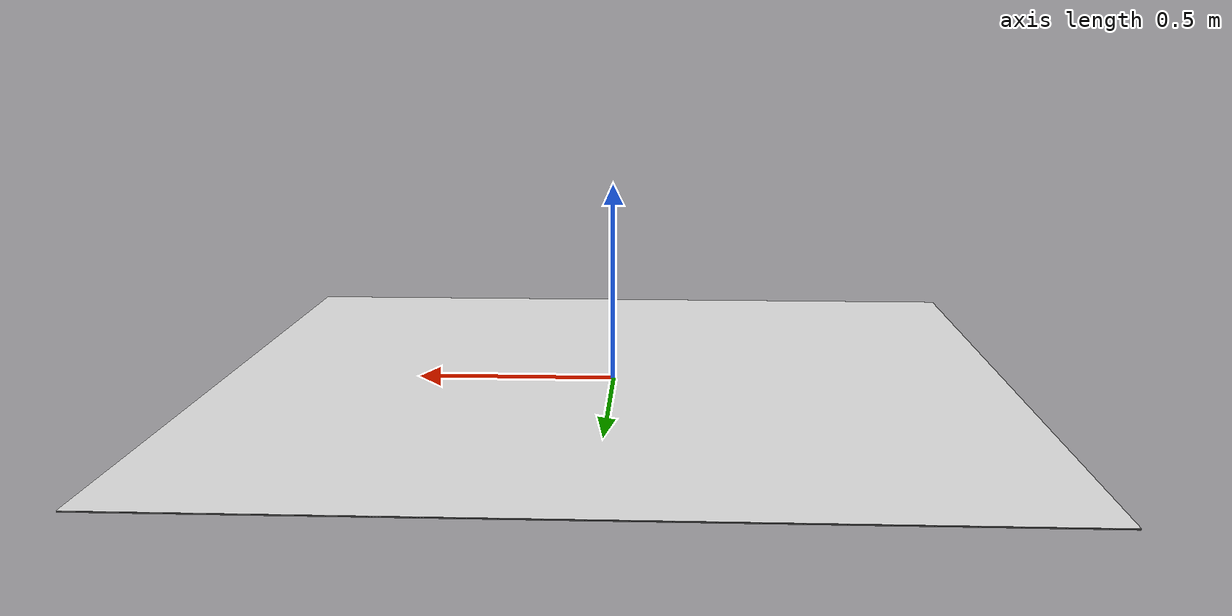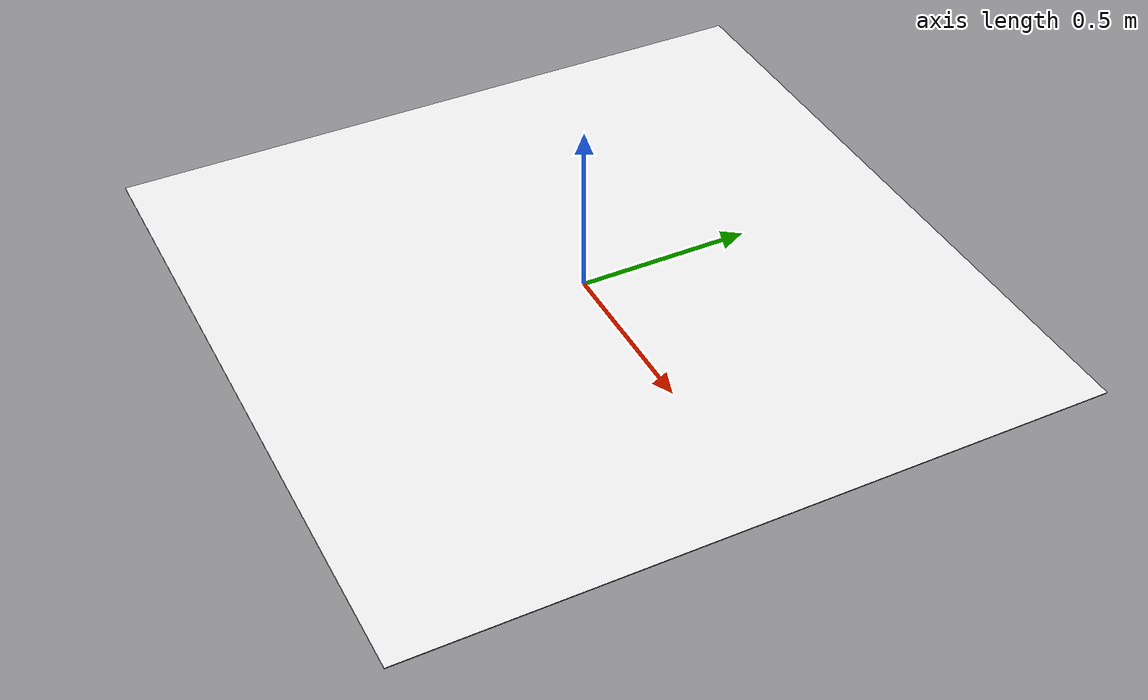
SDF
<?xml version="1.0" ?>
<sdf version="1.8">
  <model name="aruco_marker_999">
    <static>true</static>
    <link name="link">
      <pose>0 0 0 0 0 0</pose>
      <inertial>
        <mass>0.01</mass>
        <inertia>
          <ixx>0.001</ixx>
          <iyy>0.001</iyy>
          <izz>0.002</izz>
        </inertia>
      </inertial>

      <!-- Visual (frente do marcador) -->
      <visual name="front_visual">
        <pose>0 0 0.001 0 0 0</pose>
        <geometry>
          <box>
            <size>2.0 2.0 0.001</size>
          </box>
        </geometry>
        <material>
          <ambient>1 1 1 1</ambient>
          <diffuse>1 1 1 1</diffuse>
          <specular>0.1 0.1 0.1 1</specular>
          <pbr>
            <metal>
              <albedo_map>model://ArUco999/materials/textures/aruco_marker_999.png</albedo_map>
            </metal>
          </pbr>
        </material>
      </visual>

      <!-- Visual (verso - branco) -->
      <visual name="back_visual">
        <pose>0 0 -0.001 0 0 0</pose>
        <geometry>
          <box>
            <size>2.0 2.0 0.001</size>
          </box>
        </geometry>
        <material>
          <ambient>0.9 0.9 0.9 1</ambient>
          <diffuse>0.9 0.9 0.9 1</diffuse>
        </material>
      </visual>

      <!-- Visual (lateral - espessura) -->
      <visual name="edge_visual">
        <pose>0 0 0 0 0 0</pose>
        <geometry>
          <box>
            <size>2.0 2.0 0.002</size>
          </box>
        </geometry>
        <material>
          <ambient>0.3 0.3 0.3 1</ambient>
          <diffuse>0.3 0.3 0.3 1</diffuse>
        </material>
      </visual>

      <!-- Collision -->
      <collision name="collision">
        <pose>0 0 0 0 0 0</pose>
        <geometry>
          <box>
            <size>2.0 2.0 0.002</size>
          </box>
        </geometry>
        <surface>
          <friction>
            <ode>
              <mu>0.6</mu>
              <mu2>0.6</mu2>
            </ode>
          </friction>
        </surface>
      </collision>

    </link>
  </model>
</sdf>
